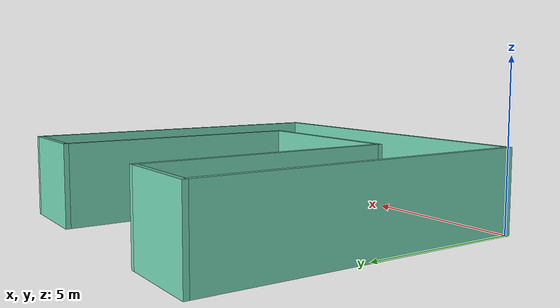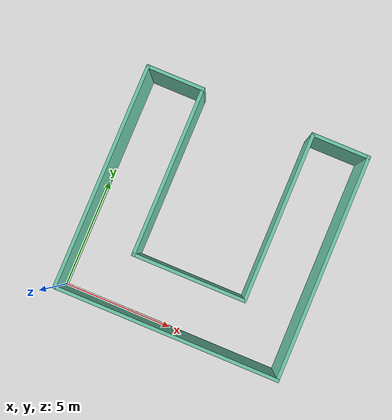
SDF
<?xml version='1.0'?>
<sdf version='1.7'>
  <model name='mybuild'>
    <pose>5 5 0 0 -0 0</pose>
    <link name='Wall_10'>
      <collision name='Wall_10_Collision'>
        <geometry>
          <box>
            <size>10.15 0.15 2.5</size>
          </box>
        </geometry>
        <pose>0 0 1.25 0 -0 0</pose>
      </collision>
      <visual name='Wall_10_Visual'>
        <pose>0 0 1.25 0 -0 0</pose>
        <geometry>
          <box>
            <size>10.15 0.15 2.5</size>
          </box>
        </geometry>
        <material>
          <script>
            <uri>file://media/materials/scripts/gazebo.material</uri>
            <name>Gazebo/Grey</name>
          </script>
          <ambient>0.435294 0.796078 0.67451 1</ambient>
        </material>
        <meta>
          <layer>0</layer>
        </meta>
      </visual>
      <pose>-0 -5 0 0 -0 0</pose>
    </link>
    <link name='Wall_11'>
      <collision name='Wall_11_Collision'>
        <geometry>
          <box>
            <size>10.15 0.15 2.5</size>
          </box>
        </geometry>
        <pose>0 0 1.25 0 -0 0</pose>
      </collision>
      <visual name='Wall_11_Visual'>
        <pose>0 0 1.25 0 -0 0</pose>
        <geometry>
          <box>
            <size>10.15 0.15 2.5</size>
          </box>
        </geometry>
        <material>
          <script>
            <uri>file://media/materials/scripts/gazebo.material</uri>
            <name>Gazebo/Grey</name>
          </script>
          <ambient>0.435294 0.796078 0.67451 1</ambient>
        </material>
        <meta>
          <layer>0</layer>
        </meta>
      </visual>
      <pose>5 -0 0 0 -0 1.5708</pose>
    </link>
    <link name='Wall_12'>
      <collision name='Wall_12_Collision'>
        <geometry>
          <box>
            <size>2.65 0.15 2.5</size>
          </box>
        </geometry>
        <pose>0 0 1.25 0 -0 0</pose>
      </collision>
      <visual name='Wall_12_Visual'>
        <pose>0 0 1.25 0 -0 0</pose>
        <geometry>
          <box>
            <size>2.65 0.15 2.5</size>
          </box>
        </geometry>
        <material>
          <script>
            <uri>file://media/materials/scripts/gazebo.material</uri>
            <name>Gazebo/Grey</name>
          </script>
          <ambient>0.435294 0.796078 0.67451 1</ambient>
        </material>
        <meta>
          <layer>0</layer>
        </meta>
      </visual>
      <pose>3.75 5 0 0 -0 3.14159</pose>
    </link>
    <link name='Wall_13'>
      <collision name='Wall_13_Collision'>
        <geometry>
          <box>
            <size>7.65 0.15 2.5</size>
          </box>
        </geometry>
        <pose>0 0 1.25 0 -0 0</pose>
      </collision>
      <visual name='Wall_13_Visual'>
        <pose>0 0 1.25 0 -0 0</pose>
        <geometry>
          <box>
            <size>7.65 0.15 2.5</size>
          </box>
        </geometry>
        <material>
          <script>
            <uri>file://media/materials/scripts/gazebo.material</uri>
            <name>Gazebo/Grey</name>
          </script>
          <ambient>0.435294 0.796078 0.67451 1</ambient>
        </material>
        <meta>
          <layer>0</layer>
        </meta>
      </visual>
      <pose>2.5 1.25 0 0 -0 -1.5708</pose>
    </link>
    <link name='Wall_14'>
      <collision name='Wall_14_Collision'>
        <geometry>
          <box>
            <size>5.15 0.15 2.5</size>
          </box>
        </geometry>
        <pose>0 0 1.25 0 -0 0</pose>
      </collision>
      <visual name='Wall_14_Visual'>
        <pose>0 0 1.25 0 -0 0</pose>
        <geometry>
          <box>
            <size>5.15 0.15 2.5</size>
          </box>
        </geometry>
        <material>
          <script>
            <uri>file://media/materials/scripts/gazebo.material</uri>
            <name>Gazebo/Grey</name>
          </script>
          <ambient>0.435294 0.796078 0.67451 1</ambient>
        </material>
        <meta>
          <layer>0</layer>
        </meta>
      </visual>
      <pose>-0 -2.5 0 0 -0 3.14159</pose>
    </link>
    <link name='Wall_15'>
      <collision name='Wall_15_Collision'>
        <geometry>
          <box>
            <size>7.65 0.15 2.5</size>
          </box>
        </geometry>
        <pose>0 0 1.25 0 -0 0</pose>
      </collision>
      <visual name='Wall_15_Visual'>
        <pose>0 0 1.25 0 -0 0</pose>
        <geometry>
          <box>
            <size>7.65 0.15 2.5</size>
          </box>
        </geometry>
        <material>
          <script>
            <uri>file://media/materials/scripts/gazebo.material</uri>
            <name>Gazebo/Grey</name>
          </script>
          <ambient>0.435294 0.796078 0.67451 1</ambient>
        </material>
        <meta>
          <layer>0</layer>
        </meta>
      </visual>
      <pose>-2.5 1.25 0 0 -0 1.5708</pose>
    </link>
    <link name='Wall_16'>
      <collision name='Wall_16_Collision'>
        <geometry>
          <box>
            <size>2.65 0.15 2.5</size>
          </box>
        </geometry>
        <pose>0 0 1.25 0 -0 0</pose>
      </collision>
      <visual name='Wall_16_Visual'>
        <pose>0 0 1.25 0 -0 0</pose>
        <geometry>
          <box>
            <size>2.65 0.15 2.5</size>
          </box>
        </geometry>
        <material>
          <script>
            <uri>file://media/materials/scripts/gazebo.material</uri>
            <name>Gazebo/Grey</name>
          </script>
          <ambient>0.435294 0.796078 0.67451 1</ambient>
        </material>
        <meta>
          <layer>0</layer>
        </meta>
      </visual>
      <pose>-3.75 5 0 0 -0 3.14159</pose>
    </link>
    <link name='Wall_9'>
      <collision name='Wall_9_Collision'>
        <geometry>
          <box>
            <size>10.15 0.15 2.5</size>
          </box>
        </geometry>
        <pose>0 0 1.25 0 -0 0</pose>
      </collision>
      <visual name='Wall_9_Visual'>
        <pose>0 0 1.25 0 -0 0</pose>
        <geometry>
          <box>
            <size>10.15 0.15 2.5</size>
          </box>
        </geometry>
        <material>
          <script>
            <uri>file://media/materials/scripts/gazebo.material</uri>
            <name>Gazebo/Grey</name>
          </script>
          <ambient>0.435294 0.796078 0.67451 1</ambient>
        </material>
        <meta>
          <layer>0</layer>
        </meta>
      </visual>
      <pose>-5 -0 0 0 -0 -1.5708</pose>
    </link>
    <static>1</static>
  </model>
</sdf>
